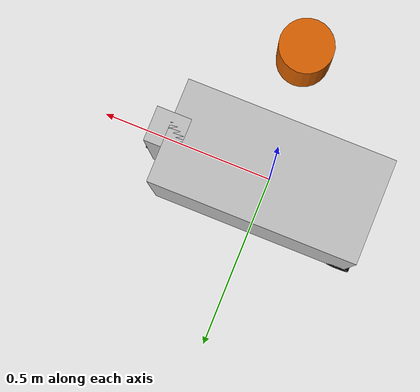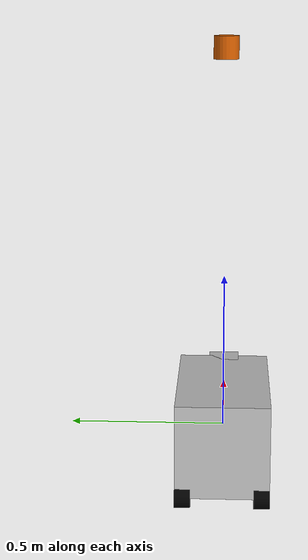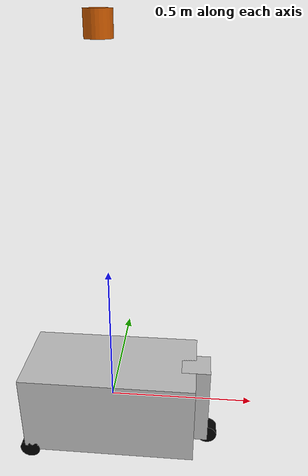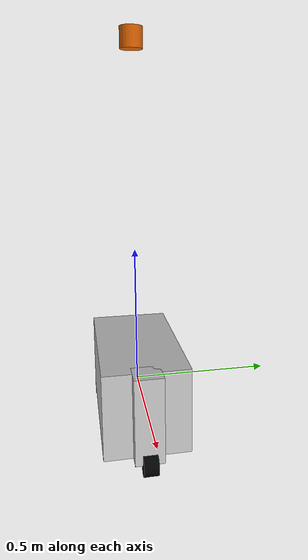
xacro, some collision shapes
<?xml version="1.0"?>
<robot xmlns:xacro="http://www.ros.org/wiki/xacro" name="tortoisebot">

    <!-- This will be the main body of the tortoise bot -->
    <link name="base_link">
        <visual>
            <geometry>
                <box size="0.6 0.3 0.3" />
            </geometry>
            <material name="silver">
                <color rgba="0.75 0.75 0.75 1" />
            </material>
        </visual>
        <collision>
            <geometry>
                <box size="0.6 0.3 0.3" />
            </geometry>
        </collision>
        <inertial>
            <mass value="1.0" />
            <inertia ixx="0.015" iyy="0.0375" izz="0.0375" ixy="0" ixz="0" iyz="0" />
        </inertial>
    </link>
    <!-- Define front caster -->
    <link name="front_caster">
        <visual>
            <geometry>
                <box size="0.1 0.1 0.3" />
            </geometry>
            <material name="silver" />
        </visual>
        <collision>
            <geometry>
                <box size="0.1 0.1 0.3" />
            </geometry>
        </collision>
        <inertial>
            <mass value="0.1" />
            <inertia ixx="0.00083" iyy="0.00083" izz="0.000167" ixy="0" ixz="0" iyz="0" />
        </inertial>
    </link>
    <!-- Define joint between front caster and main body -->
    <joint name="front_caster_joint" type="continuous">
        <axis xyz="0 0 1" />
        <parent link="base_link" />
        <child link="front_caster" />
        <origin rpy="0 0 0" xyz="0.3 0 0" />
    </joint>

    <!-- Add front wheel and joint -->
    <link name="front_wheel">
        <visual>
            <geometry>
                <cylinder length="0.05" radius="0.035" />
            </geometry>
            <material name="black" />
        </visual>
        <collision>
            <geometry>
                <cylinder length="0.05" radius="0.035" />
            </geometry>
        </collision>
        <inertial>
            <mass value="0.1" />
            <inertia ixx="5.1458e-5" iyy="5.1458e-5" izz="6.125e-5" ixy="0" ixz="0" iyz="0" />
        </inertial>
    </link>
    <joint name="front_wheel_joint" type="continuous">
        <axis xyz="0 0 1" />
        <parent link="front_caster" />
        <child link="front_wheel" />
        <!-- rotate by -90 deg around the x axis -->
        <origin rpy="-1.5708 0 0" xyz="0.05 0 -.15" />
    </joint>

    <!-- Add rear wheels -->
    <link name="right_wheel">
        <visual>
            <geometry>
                <cylinder length="0.05" radius="0.035" />
            </geometry>
            <material name="black">
                <color rgba="0 0 0 1" />
            </material>
        </visual>
        <collision>
            <geometry>
                <cylinder length="0.05" radius="0.035" />
            </geometry>
        </collision>
        <inertial>
            <mass value="0.1" />
            <inertia ixx="5.1458e-5" iyy="5.1458e-5" izz="6.125e-5" ixy="0" ixz="0" iyz="0" />
        </inertial>
    </link>
    <joint name="right_wheel_joint" type="continuous">
        <axis xyz="0 0 1" />
        <parent link="base_link" />
        <child link="right_wheel" />
        <origin rpy="-1.5708 0 0" xyz="-0.2825 -0.125 -.15" />
    </joint>

    <link name="left_wheel">
        <visual>
            <geometry>
                <cylinder length="0.05" radius="0.035" />
            </geometry>
            <material name="black" />
        </visual>
        <collision>
            <geometry>
                <cylinder length="0.05" radius="0.035" />
            </geometry>
        </collision>
        <inertial>
            <mass value="0.1" />
            <inertia ixx="5.1458e-5" iyy="5.1458e-5" izz="6.125e-5" ixy="0" ixz="0" iyz="0" />
        </inertial>
    </link>
    <joint name="left_wheel_joint" type="continuous">
        <axis xyz="0 0 1" />
        <parent link="base_link" />
        <child link="left_wheel" />
        <origin rpy="-1.5708 0 0" xyz="-0.2825 0.125 -.15" />
    </joint>

    <!-- Mount Ouster OS1-64 LiDAR -->
    <xacro:include filename="$(find ouster_description)/urdf/OS1-64.urdf.xacro" />
    <OS1-64 parent="base_link" name="os1_sensor" hz="10" samples="220">
        <origin xyz="0 0 1.2" rpy="0 0 0" />
    </OS1-64>

    <!-- Load differential drive plugin -->
    <gazebo>
        <plugin name="differential_drive_controller" filename="libgazebo_ros_diff_drive.so">
            <leftJoint>left_wheel_joint</leftJoint>
            <rightJoint>right_wheel_joint</rightJoint>
            <robotBaseFrame>base_link</robotBaseFrame>
            <wheelSeparation>0.25</wheelSeparation>
            <wheelDiameter>0.07</wheelDiameter>
            <publishWheelJointState>true</publishWheelJointState>
        </plugin>
    </gazebo>

    <!-- GPS Sensor -->
    <gazebo>
        <plugin name="gps_sensor" filename="libhector_gazebo_ros_gps.so">
            <alwaysOn>1</alwaysOn>
            <updateRate>10.0</updateRate>
            <robotNamespace> gps </robotNamespace>
            <bodyName>base_link</bodyName>
            <robotBaseFrame>base_link</robotBaseFrame>
            <topicName>/fix</topicName>
            <velocityTopicName>/fix_velocity</velocityTopicName>
            <drift>0.0 0.0 0.0</drift>
            <gaussianNoise>0.5 0.5 0.5</gaussianNoise>
            <velocityDrift>0 0 0</velocityDrift>
            <velocityGaussianNoise>0.01 0.01 0.01</velocityGaussianNoise>
        </plugin>
    </gazebo>
    <!-- TRUE GPS Sensor -->
</robot>

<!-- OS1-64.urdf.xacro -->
<robot xmlns:xacro="http://www.ros.org/wiki/xacro" name="OS1-64">
  <xacro:property name="M_PI" value="3.1415926535897931" />
  <xacro:macro name="OS1-64" params="*origin parent:=CHASSIS name:=os1_sensor topic_points:=/os1_cloud_node/points topic_imu:=/os1_cloud_node/imu hz:=10 lasers:=64 samples:=512 min_range:=0.9 max_range:=75.0 noise:=0.008 min_angle:=-${M_PI} max_angle:=${M_PI} lidar_link:=os1_lidar imu_link:=os1_imu vfov_min:=-.26 vfov_max:=.26">

    <joint name="${name}_mount_joint" type="fixed">
      <xacro:insert_block name="origin" />
      <parent link="${parent}"/>
      <child link="${name}"/>
    </joint>

    <link name="${name}">
      <inertial>
         <mass value="0.01"/>
         <origin xyz="0 0 0.0365" rpy="0 0 0" />
         <inertia ixx="0.000241148" ixy="0" ixz="0"
          iyy="0.000241148" iyz="0" izz="0.000264"/>
      </inertial>
      <collision name="base_collision">
         <origin xyz="0 0 0.0365" rpy="0 0 0" />
         <geometry>
 	        <cylinder radius="0.04" length="0.073"/>
         </geometry>
      </collision>
      <visual name="base_visual">
         <origin xyz="0 0 0.0" rpy="0 0 1.5707" />
         <geometry>
	         <mesh filename="package://ouster_description/meshes/os1_64.dae" />
         </geometry>
      </visual>
    </link>

    <link name="${imu_link}" />

    <link name="${lidar_link}" />

    <joint name="${name}_imu_link_joint" type="fixed">
      <parent link="${name}" />
      <child link="${imu_link}" />
      <origin xyz="0.006253 -0.011775 0.007645" rpy="0 0 0" />
    </joint>
    <gazebo reference="${imu_link}">
    </gazebo>

    <joint name="${name}_lidar_link_joint" type="fixed">
      <parent link="${name}" />
      <child link="${lidar_link}" />
      <origin xyz="0.0 0.0 0.03618" rpy="0 0 0" />
    </joint>

    <!-- Gazebo requires the ouster_gazebo_plugins package -->
    <gazebo reference="${name}">
        <sensor type="ray" name="${name}-OS1-64">
          <pose>0 0 0 0 0 0</pose>
          <visualize>false</visualize>
          <update_rate>${hz}</update_rate>
          <ray>
            <scan>
              <horizontal>
                <samples>${samples}</samples>
                <resolution>1</resolution>
                <min_angle>${min_angle}</min_angle>
                <max_angle>${max_angle}</max_angle>
              </horizontal>
              <vertical>
                <samples>${lasers}</samples>
                <resolution>1</resolution>
                <min_angle>${vfov_min}</min_angle>
                <max_angle>${vfov_max}</max_angle>
              </vertical>
            </scan>
            <range>
              <min>${min_range}</min>
              <max>${max_range}</max>
              <resolution>0.03</resolution>
            </range>
          </ray>
          <plugin name="gazebo_ros_laser_controller" filename="libgazebo_ros_ouster_laser.so">
            <topicName>${topic_points}</topicName>
            <frameName>${lidar_link}</frameName>
            <min_range>${min_range}</min_range>
            <max_range>${max_range}</max_range>
            <gaussianNoise>${noise}</gaussianNoise>
          </plugin>
        </sensor>
    </gazebo>

    <!-- IMU -->
  <gazebo>
    <plugin name="imu_controller" filename="libhector_gazebo_ros_imu.so">
      <robotNamespace>/</robotNamespace>
      <updateRate>100.0</updateRate>
      <bodyName>${imu_link}</bodyName>
      <topicName>${topic_imu}</topicName>
      <accelDrift>0.005 0.005 0.005</accelDrift>
      <accelGaussianNoise>0.005 0.005 0.005</accelGaussianNoise>
      <rateDrift>0.005 0.005 0.005 </rateDrift>
      <rateGaussianNoise>0.005 0.005 0.005 </rateGaussianNoise>
      <headingDrift>0.005</headingDrift>
      <headingGaussianNoise>0.005</headingGaussianNoise>
    </plugin>
  </gazebo>

  </xacro:macro>
</robot>
